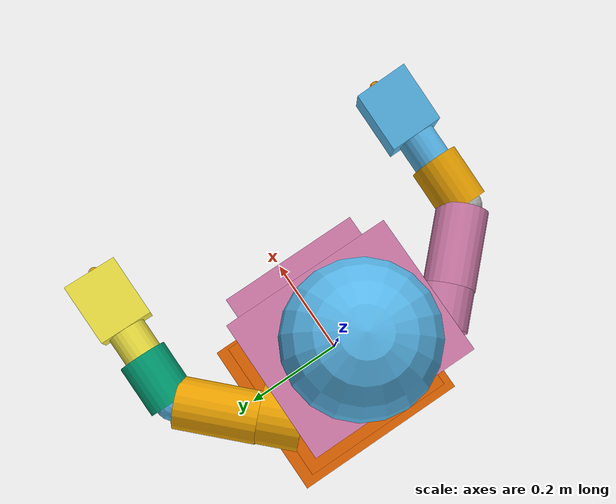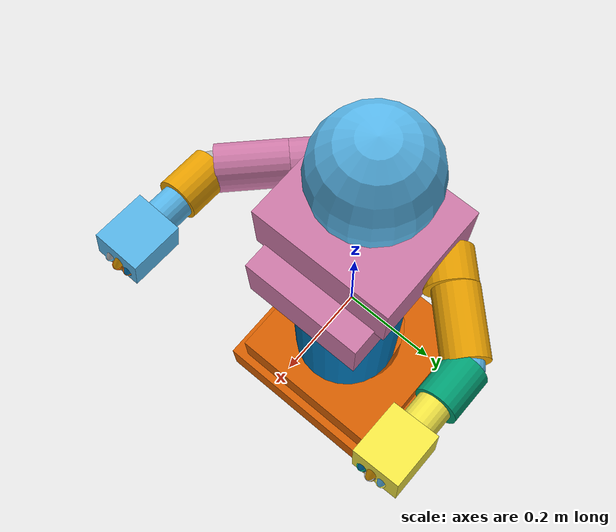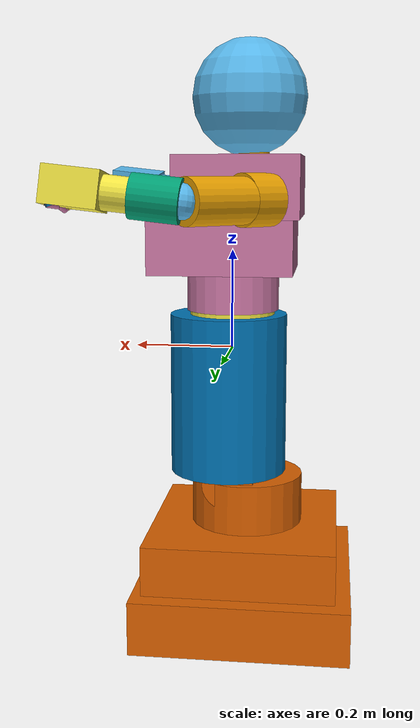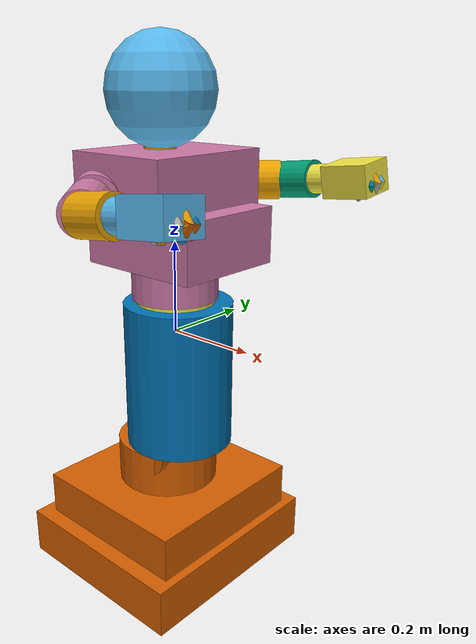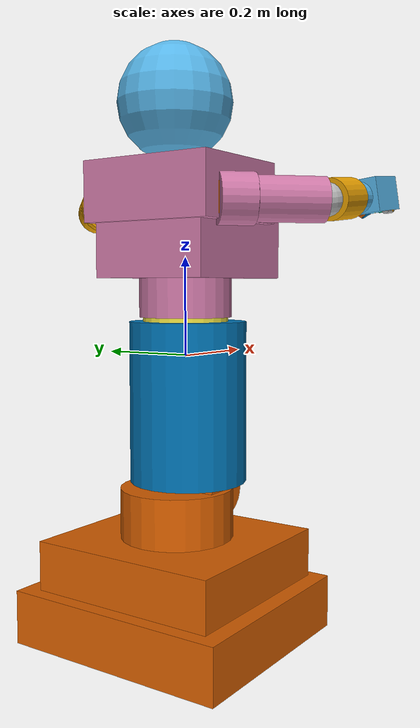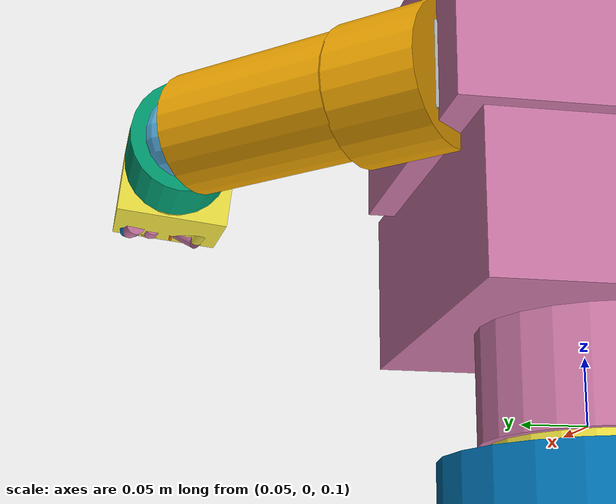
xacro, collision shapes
<?xml version="1.0" ?>
<robot name="Pepper" xmlns:xacro="http://www.ros.org/wiki/xacro">
	<xacro:arg name="base_link_height" default="0.602"/>
	<xacro:property name="base_link_height" value="$(arg base_link_height)"/>
	<xacro:property name="base_ground_clearance" value="0.334"/>
	<xacro:include filename="pepper_collisions.xacro"/>
	<xacro:include filename="pepper_visuals.xacro"/>
	<xacro:include filename="pepper_head.xacro"/>
	<xacro:include filename="pepper_legs.xacro"/>
	<xacro:include filename="pepper_torso.xacro"/>
	<xacro:include filename="pepper_arms.xacro"/>
	<xacro:include filename="pepper_sensors.xacro"/>
	<xacro:include filename="pepper_fingers.xacro"/>
	<xacro:include filename="pepper_wheels.xacro"/>
</robot>

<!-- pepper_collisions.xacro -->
<robot xmlns:xacro="http://www.ros.org/wiki/xacro">
  <xacro:macro name="collision_sphere" params="name radius xyz:='0 0 0'">
    <collision name="${name}">
      <origin xyz="${xyz}" rpy="0 0 0"/>
      <geometry><sphere radius="${radius}"/></geometry>
    </collision>
  </xacro:macro>

  <xacro:macro name="collision_cylinder" params="name radius length xyz rpy:='0 0 0'">
    <collision name="${name}">
      <origin xyz="${xyz}" rpy="${rpy}"/>
      <geometry><cylinder radius="${radius}" length="${length}"/></geometry>
    </collision>
  </xacro:macro>

  <xacro:macro name="collision_box" params="name size xyz">
    <collision name="${name}">
      <origin xyz="${xyz}" rpy="0 0 0"/>
      <geometry><box size="${size}"/></geometry>
    </collision>
  </xacro:macro>

  <xacro:macro name="collision_wheel">
    <xacro:collision_sphere name="wheel" radius="0.070"/>
  </xacro:macro>

  <xacro:macro name="collision_base">
    <xacro:collision_box name="lower_chassis" size="0.432 0.476 0.108"
                         xyz="-0.035 0 -0.254"/>
    <xacro:collision_box name="middle_chassis" size="0.382 0.404 0.100"
                         xyz="-0.030 0 -0.150"/>
    <xacro:collision_cylinder name="upper_chassis" radius="0.115" length="0.104"
                              xyz="-0.0318 0 -0.050"/>
    <xacro:collision_cylinder name="knee" radius="0.052" length="0.200"
                              xyz="0 0 0" rpy="${pi/2} 0 0"/>
  </xacro:macro>

  <xacro:macro name="collision_pelvis">
    <xacro:collision_cylinder name="pelvis" radius="0.120" length="0.330"
                              xyz="0.008 0 ${0.268 - 0.095}"/>
  </xacro:macro>

  <xacro:macro name="collision_hip">
    <xacro:collision_cylinder name="lower_hip" radius="0.087" length="0.160"
                              xyz="0.00046 0 ${0.079 - 0.080}"/>
    <xacro:collision_cylinder name="upper_hip" radius="0.051" length="0.046"
                              xyz="0.00031 0 ${0.079 + 0.022}"/>
  </xacro:macro>

  <xacro:macro name="collision_torso">
    <xacro:collision_cylinder name="lower_torso" radius="0.094" length="0.090"
                              xyz="${-0.00002 - 0.00066} 0 ${0.139 - 0.094}"/>
    <xacro:collision_box name="middle_torso" size="0.284 0.254 0.120"
                         xyz="${-0.00002 + 0.01475} 0 0.139"/>
    <xacro:collision_box name="upper_torso" size="0.244 0.294 0.122"
                         xyz="${-0.00002 - 0.018} 0 ${0.139 + 0.110}"/>
  </xacro:macro>

  <xacro:macro name="collision_neck">
    <xacro:collision_cylinder name="neck" radius="0.034" length="0.064"
                              xyz="-0.00075 0 0.00395"/>
  </xacro:macro>

  <xacro:macro name="collision_head">
    <xacro:collision_sphere name="head" radius="0.115" xyz="0.00485 0 0.11495"/>
  </xacro:macro>

  <xacro:macro name="collision_shoulder">
    <xacro:collision_cylinder name="shoulder" radius="0.042" length="0.060"
                              xyz="0 0 0"/>
  </xacro:macro>

  <xacro:macro name="collision_upper_arm" params="side">
    <xacro:collision_cylinder name="upper_arm_proximal" radius="0.050" length="0.070"
                              xyz="0.005 ${side * 0.00807} -0.0001" rpy="0 ${pi/2} 0"/>
    <xacro:collision_cylinder name="upper_arm_distal" radius="0.044" length="0.136"
                              xyz="0.107 ${side * 0.0155} -0.0005" rpy="0 ${pi/2} 0"/>
  </xacro:macro>

  <xacro:macro name="collision_elbow">
    <xacro:collision_sphere name="elbow" radius="0.0325"/>
  </xacro:macro>

  <xacro:macro name="collision_forearm" params="side">
    <xacro:collision_cylinder name="forearm" radius="0.041" length="0.090"
                              xyz="0.045 ${side * 0.002} -0.0003" rpy="0 ${pi/2} 0"/>
  </xacro:macro>

  <xacro:macro name="collision_hand" params="side">
    <xacro:collision_cylinder name="wrist" radius="0.032" length="0.054"
                              xyz="-0.037 0 0" rpy="0 ${pi/2} 0"/>
    <xacro:collision_box name="palm" size="0.105 0.090 0.069"
                         xyz="0.042 ${side * -0.00275} 0.00085"/>
  </xacro:macro>

  <xacro:macro name="collision_finger">
    <xacro:collision_cylinder name="phalanx" radius="0.009" length="0.028"
                              xyz="0.0083 0.0001 0.0004" rpy="0 ${pi/2} 0"/>
  </xacro:macro>

  <xacro:macro name="collision_fingertip">
    <xacro:collision_cylinder name="fingertip" radius="0.0083" length="0.023"
                              xyz="0.00585 0.000325 0.0011" rpy="0 ${pi/2} 0"/>
  </xacro:macro>
</robot>

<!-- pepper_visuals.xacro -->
<robot xmlns:xacro="http://www.ros.org/wiki/xacro">
	<xacro:macro name="insert_visu_RFinger41_link">
		<visual>
			<geometry>
				<mesh filename="package://pepper_description/meshes/RFinger41.dae" scale="0.1 0.1 0.1"/>
			</geometry>
			<origin rpy="0 0 0" xyz="0 0 0"/>
		</visual>
	</xacro:macro>
	<xacro:macro name="insert_visu_LFinger42_link">
		<visual>
			<geometry>
				<mesh filename="package://pepper_description/meshes/LFinger42.dae" scale="0.1 0.1 0.1"/>
			</geometry>
			<origin rpy="0 0 0" xyz="0 0 0"/>
		</visual>
	</xacro:macro>
	<xacro:macro name="insert_visu_Hip">
		<visual>
			<geometry>
				<mesh filename="package://pepper_description/meshes/HipRoll.dae" scale="0.1 0.1 0.1"/>
			</geometry>
			<origin rpy="0 0 0" xyz="0 0 0.079"/>
		</visual>
	</xacro:macro>
	<xacro:macro name="insert_visu_LElbow">
		<visual>
			<geometry>
				<mesh filename="package://pepper_description/meshes/LElbowYaw.dae" scale="0.1 0.1 0.1"/>
			</geometry>
			<origin rpy="0 0 0" xyz="0 0 0"/>
		</visual>
	</xacro:macro>
	<xacro:macro name="insert_visu_RFinger12_link">
		<visual>
			<geometry>
				<mesh filename="package://pepper_description/meshes/RFinger12.dae" scale="0.1 0.1 0.1"/>
			</geometry>
			<origin rpy="0 0 0" xyz="0 0 0"/>
		</visual>
	</xacro:macro>
	<xacro:macro name="insert_visu_LFinger33_link">
		<visual>
			<geometry>
				<mesh filename="package://pepper_description/meshes/LFinger33.dae" scale="0.1 0.1 0.1"/>
			</geometry>
			<origin rpy="0 0 0" xyz="0 0 0"/>
		</visual>
	</xacro:macro>
	<xacro:macro name="insert_visu_RFinger31_link">
		<visual>
			<geometry>
				<mesh filename="package://pepper_description/meshes/RFinger31.dae" scale="0.1 0.1 0.1"/>
			</geometry>
			<origin rpy="0 0 0" xyz="0 0 0"/>
		</visual>
	</xacro:macro>
	<xacro:macro name="insert_visu_WheelFL_link">
		<visual>
			<geometry>
				<mesh filename="package://pepper_description/meshes/WheelFL.dae" scale="0.1 0.1 0.1"/>
			</geometry>
			<origin rpy="0 0 0" xyz="0 0 0"/>
		</visual>
	</xacro:macro>
	<xacro:macro name="insert_visu_LFinger21_link">
		<visual>
			<geometry>
				<mesh filename="package://pepper_description/meshes/LFinger21.dae" scale="0.1 0.1 0.1"/>
			</geometry>
			<origin rpy="0 0 0" xyz="0 0 0"/>
		</visual>
	</xacro:macro>
	<xacro:macro name="insert_visu_RFinger32_link">
		<visual>
			<geometry>
				<mesh filename="package://pepper_description/meshes/RFinger32.dae" scale="0.1 0.1 0.1"/>
			</geometry>
			<origin rpy="0 0 0" xyz="0 0 0"/>
		</visual>
	</xacro:macro>
	<xacro:macro name="insert_visu_LFinger13_link">
		<visual>
			<geometry>
				<mesh filename="package://pepper_description/meshes/LFinger13.dae" scale="0.1 0.1 0.1"/>
			</geometry>
			<origin rpy="0 0 0" xyz="0 0 0"/>
		</visual>
	</xacro:macro>
	<xacro:macro name="insert_visu_LFinger32_link">
		<visual>
			<geometry>
				<mesh filename="package://pepper_description/meshes/LFinger32.dae" scale="0.1 0.1 0.1"/>
			</geometry>
			<origin rpy="0 0 0" xyz="0 0 0"/>
		</visual>
	</xacro:macro>
	<xacro:macro name="insert_visu_LThumb1_link">
		<visual>
			<geometry>
				<mesh filename="package://pepper_description/meshes/LThumb1.dae" scale="0.1 0.1 0.1"/>
			</geometry>
			<origin rpy="0 0 0" xyz="0 0 0"/>
		</visual>
	</xacro:macro>
	<xacro:macro name="insert_visu_LFinger11_link">
		<visual>
			<geometry>
				<mesh filename="package://pepper_description/meshes/LFinger11.dae" scale="0.1 0.1 0.1"/>
			</geometry>
			<origin rpy="0 0 0" xyz="0 0 0"/>
		</visual>
	</xacro:macro>
	<xacro:macro name="insert_visu_RFinger22_link">
		<visual>
			<geometry>
				<mesh filename="package://pepper_description/meshes/RFinger22.dae" scale="0.1 0.1 0.1"/>
			</geometry>
			<origin rpy="0 0 0" xyz="0 0 0"/>
		</visual>
	</xacro:macro>
	<xacro:macro name="insert_visu_RThumb2_link">
		<visual>
			<geometry>
				<mesh filename="package://pepper_description/meshes/RThumb2.dae" scale="0.1 0.1 0.1"/>
			</geometry>
			<origin rpy="0 0 0" xyz="0 0 0"/>
		</visual>
	</xacro:macro>
	<xacro:macro name="insert_visu_RFinger13_link">
		<visual>
			<geometry>
				<mesh filename="package://pepper_description/meshes/RFinger13.dae" scale="0.1 0.1 0.1"/>
			</geometry>
			<origin rpy="0 0 0" xyz="0 0 0"/>
		</visual>
	</xacro:macro>
	<xacro:macro name="insert_visu_base">
		<visual>
			<geometry>
				<mesh filename="package://pepper_description/meshes/KneePitch.dae" scale="0.1 0.1 0.1"/>
			</geometry>
			<origin rpy="0 0 0" xyz="0 0 0"/>
		</visual>
	</xacro:macro>
	<xacro:macro name="insert_visu_Head">
		<visual>
			<geometry>
				<mesh filename="package://pepper_description/meshes/HeadPitch.dae" scale="0.1 0.1 0.1"/>
			</geometry>
			<origin rpy="0 0 0" xyz="0 0 0"/>
		</visual>
	</xacro:macro>
	<xacro:macro name="insert_visu_LFinger22_link">
		<visual>
			<geometry>
				<mesh filename="package://pepper_description/meshes/LFinger22.dae" scale="0.1 0.1 0.1"/>
			</geometry>
			<origin rpy="0 0 0" xyz="0 0 0"/>
		</visual>
	</xacro:macro>
	<xacro:macro name="insert_visu_RFinger21_link">
		<visual>
			<geometry>
				<mesh filename="package://pepper_description/meshes/RFinger21.dae" scale="0.1 0.1 0.1"/>
			</geometry>
			<origin rpy="0 0 0" xyz="0 0 0"/>
		</visual>
	</xacro:macro>
	<xacro:macro name="insert_visu_LBicep">
		<visual>
			<geometry>
				<mesh filename="package://pepper_description/meshes/LShoulderRoll.dae" scale="0.1 0.1 0.1"/>
			</geometry>
			<origin rpy="0 0 0" xyz="0 0 0"/>
		</visual>
	</xacro:macro>
	<xacro:macro name="insert_visu_RThumb1_link">
		<visual>
			<geometry>
				<mesh filename="package://pepper_description/meshes/RThumb1.dae" scale="0.1 0.1 0.1"/>
			</geometry>
			<origin rpy="0 0 0" xyz="0 0 0"/>
		</visual>
	</xacro:macro>
	<xacro:macro name="insert_visu_LFinger41_link">
		<visual>
			<geometry>
				<mesh filename="package://pepper_description/meshes/LFinger41.dae" scale="0.1 0.1 0.1"/>
			</geometry>
			<origin rpy="0 0 0" xyz="0 0 0"/>
		</visual>
	</xacro:macro>
	<xacro:macro name="insert_visu_r_wrist">
		<visual>
			<geometry>
				<mesh filename="package://pepper_description/meshes/RWristYaw.dae" scale="0.1 0.1 0.1"/>
			</geometry>
			<origin rpy="0 0 0" xyz="0 0 0"/>
		</visual>
	</xacro:macro>
	<xacro:macro name="insert_visu_LForeArm">
		<visual>
			<geometry>
				<mesh filename="package://pepper_description/meshes/LElbowRoll.dae" scale="0.1 0.1 0.1"/>
			</geometry>
			<origin rpy="0 0 0" xyz="0 0 0"/>
		</visual>
	</xacro:macro>
	<xacro:macro name="insert_visu_LThumb2_link">
		<visual>
			<geometry>
				<mesh filename="package://pepper_description/meshes/LThumb2.dae" scale="0.1 0.1 0.1"/>
			</geometry>
			<origin rpy="0 0 0" xyz="0 0 0"/>
		</visual>
	</xacro:macro>
	<xacro:macro name="insert_visu_LFinger12_link">
		<visual>
			<geometry>
				<mesh filename="package://pepper_description/meshes/LFinger12.dae" scale="0.1 0.1 0.1"/>
			</geometry>
			<origin rpy="0 0 0" xyz="0 0 0"/>
		</visual>
	</xacro:macro>
	<xacro:macro name="insert_visu_RShoulder">
		<visual>
			<geometry>
				<mesh filename="package://pepper_description/meshes/RShoulderPitch.dae" scale="0.1 0.1 0.1"/>
			</geometry>
			<origin rpy="0 0 0" xyz="0 0 0"/>
		</visual>
	</xacro:macro>
	<xacro:macro name="insert_visu_RFinger23_link">
		<visual>
			<geometry>
				<mesh filename="package://pepper_description/meshes/RFinger23.dae" scale="0.1 0.1 0.1"/>
			</geometry>
			<origin rpy="0 0 0" xyz="0 0 0"/>
		</visual>
	</xacro:macro>
	<xacro:macro name="insert_visu_RBicep">
		<visual>
			<geometry>
				<mesh filename="package://pepper_description/meshes/RShoulderRoll.dae" scale="0.1 0.1 0.1"/>
			</geometry>
			<origin rpy="0 0 0" xyz="0 0 0"/>
		</visual>
	</xacro:macro>
	<xacro:macro name="insert_visu_RFinger11_link">
		<visual>
			<geometry>
				<mesh filename="package://pepper_description/meshes/RFinger11.dae" scale="0.1 0.1 0.1"/>
			</geometry>
			<origin rpy="0 0 0" xyz="0 0 0"/>
		</visual>
	</xacro:macro>
	<xacro:macro name="insert_visu_WheelB_link">
		<visual>
			<geometry>
				<mesh filename="package://pepper_description/meshes/WheelB.dae" scale="0.1 0.1 0.1"/>
			</geometry>
			<origin rpy="0 0 0" xyz="0 0 0"/>
		</visual>
	</xacro:macro>
	<xacro:macro name="insert_visu_LFinger23_link">
		<visual>
			<geometry>
				<mesh filename="package://pepper_description/meshes/LFinger23.dae" scale="0.1 0.1 0.1"/>
			</geometry>
			<origin rpy="0 0 0" xyz="0 0 0"/>
		</visual>
	</xacro:macro>
	<xacro:macro name="insert_visu_RElbow">
		<visual>
			<geometry>
				<mesh filename="package://pepper_description/meshes/RElbowYaw.dae" scale="0.1 0.1 0.1"/>
			</geometry>
			<origin rpy="0 0 0" xyz="0 0 0"/>
		</visual>
	</xacro:macro>
	<xacro:macro name="insert_visu_Neck">
		<visual>
			<geometry>
				<mesh filename="package://pepper_description/meshes/HeadYaw.dae" scale="0.1 0.1 0.1"/>
			</geometry>
			<origin rpy="0 0 0" xyz="0 0 0"/>
		</visual>
	</xacro:macro>
	<xacro:macro name="insert_visu_LFinger43_link">
		<visual>
			<geometry>
				<mesh filename="package://pepper_description/meshes/LFinger43.dae" scale="0.1 0.1 0.1"/>
			</geometry>
			<origin rpy="0 0 0" xyz="0 0 0"/>
		</visual>
	</xacro:macro>
	<xacro:macro name="insert_visu_RFinger43_link">
		<visual>
			<geometry>
				<mesh filename="package://pepper_description/meshes/RFinger43.dae" scale="0.1 0.1 0.1"/>
			</geometry>
			<origin rpy="0 0 0" xyz="0 0 0"/>
		</visual>
	</xacro:macro>
	<xacro:macro name="insert_visu_torso">
		<visual>
			<geometry>
				<mesh filename="package://pepper_description/meshes/Torso.dae" scale="0.1 0.1 0.1"/>
			</geometry>
			<origin rpy="0 0 0" xyz="-0.00002 0 0.139"/>
		</visual>
	</xacro:macro>
	<xacro:macro name="insert_visu_RFinger42_link">
		<visual>
			<geometry>
				<mesh filename="package://pepper_description/meshes/RFinger42.dae" scale="0.1 0.1 0.1"/>
			</geometry>
			<origin rpy="0 0 0" xyz="0 0 0"/>
		</visual>
	</xacro:macro>
	<xacro:macro name="insert_visu_LFinger31_link">
		<visual>
			<geometry>
				<mesh filename="package://pepper_description/meshes/LFinger31.dae" scale="0.1 0.1 0.1"/>
			</geometry>
			<origin rpy="0 0 0" xyz="0 0 0"/>
		</visual>
	</xacro:macro>
	<xacro:macro name="insert_visu_RFinger33_link">
		<visual>
			<geometry>
				<mesh filename="package://pepper_description/meshes/RFinger33.dae" scale="0.1 0.1 0.1"/>
			</geometry>
			<origin rpy="0 0 0" xyz="0 0 0"/>
		</visual>
	</xacro:macro>
	<xacro:macro name="insert_visu_l_wrist">
		<visual>
			<geometry>
				<mesh filename="package://pepper_description/meshes/LWristYaw.dae" scale="0.1 0.1 0.1"/>
			</geometry>
			<origin rpy="0 0 0" xyz="0 0 0"/>
		</visual>
	</xacro:macro>
	<xacro:macro name="insert_visu_RForeArm">
		<visual>
			<geometry>
				<mesh filename="package://pepper_description/meshes/RElbowRoll.dae" scale="0.1 0.1 0.1"/>
			</geometry>
			<origin rpy="0 0 0" xyz="0 0 0"/>
		</visual>
	</xacro:macro>
	<xacro:macro name="insert_visu_WheelFR_link">
		<visual>
			<geometry>
				<mesh filename="package://pepper_description/meshes/WheelFR.dae" scale="0.1 0.1 0.1"/>
			</geometry>
			<origin rpy="0 0 0" xyz="0 0 0"/>
		</visual>
	</xacro:macro>
	<xacro:macro name="insert_visu_LShoulder">
		<visual>
			<geometry>
				<mesh filename="package://pepper_description/meshes/LShoulderPitch.dae" scale="0.1 0.1 0.1"/>
			</geometry>
			<origin rpy="0 0 0" xyz="0 0 0"/>
		</visual>
	</xacro:macro>
	<xacro:macro name="insert_visu_Pelvis">
		<visual>
			<geometry>
				<mesh filename="package://pepper_description/meshes/HipPitch.dae" scale="0.1 0.1 0.1"/>
			</geometry>
			<origin rpy="0 0 0" xyz="0 0 0.268"/>
		</visual>
	</xacro:macro>
</robot>

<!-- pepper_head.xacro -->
<robot xmlns:xacro="http://www.ros.org/wiki/xacro">
	<joint name="HeadYaw" type="revolute">
		<parent link="torso"/>
		<child link="Neck"/>
		<origin rpy="0 0 0" xyz="-0.03802 0 0.3089"/>
		<axis xyz="0 0 1.0"/>
		<limit effort="5.428" lower="-2.08567" upper="2.08567" velocity="7.33998"/>
	</joint>
	<link name="Neck">
		<inertial>
			<mass value="0.27391"/>
			<inertia ixx="0.000343501" ixy="0" ixz="-1.88563e-05" iyy="0.000493898" iyz="2.09863e-06" izz="0.000215252"/>
			<origin rpy="0 0 0" xyz="-0.00207 0 -0.02636"/>
		</inertial>
		<xacro:insert_visu_Neck/>
		<xacro:collision_neck/>
	</link>
	<joint name="HeadPitch" type="revolute">
		<parent link="Neck"/>
		<child link="Head"/>
		<origin rpy="0 0 0" xyz="0 0 0"/>
		<axis xyz="0 1.0 0"/>
		<limit effort="2.666" lower="-0.706858" upper="0.637045" velocity="9.22756"/>
	</joint>
	<link name="Head">
		<inertial>
			<mass value="1.51893"/>
			<inertia ixx="0.00597209" ixy="0" ixz="0.000125138" iyy="0.0059054" iyz="4.3428e-07" izz="0.00570374"/>
			<origin rpy="0 0 0" xyz="0.00312 0 0.11152"/>
		</inertial>
		<xacro:insert_visu_Head/>
		<xacro:collision_head/>
	</link>
</robot>

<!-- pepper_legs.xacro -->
<robot xmlns:xacro="http://www.ros.org/wiki/xacro">
	<link name="base_link" />
	<joint name="base_link_fixedjoint" type="fixed">
		<parent link="base_link" />
		<child link="base" />
		<origin rpy="0 0 0" xyz="0 0 ${base_ground_clearance - base_link_height}" />
	</joint>
	<joint name="HipRoll" type="revolute">
		<parent link="Hip" />
		<child link="torso" />
		<origin rpy="0 0 0" xyz="0 0 0.079" />
		<axis xyz="-1 0 0" />
		<limit effort="10.1884" lower="-0.514872" upper="0.514872" velocity="2.27032" />
	</joint>
	<link name="Hip">
		<inertial>
			<mass value="1.02338" />
			<inertia ixx="0.00502422" ixy="0" ixz="-2.54911e-05" iyy="0.00640971" iyz="0.000159449" izz="0.00441082" />
			<origin rpy="0 0 0" xyz="0.00032 0 0.01861" />
		</inertial>
		<xacro:insert_visu_Hip />
		<xacro:collision_hip/>
	</link>
	<joint name="HipPitch" type="revolute">
		<parent link="Pelvis" />
		<child link="Hip" />
		<origin rpy="0 0 0" xyz="0 0 0.268" />
		<axis xyz="0 -1 0" />
		<limit effort="19.787" lower="-1.03847" upper="1.03847" velocity="2.93276" />
	</joint>
	<link name="Pelvis">
		<inertial>
			<mass value="2.45917" />
			<inertia ixx="0.034351" ixy="0" ixz="0.000223034" iyy="0.0303122" iyz="-8.37542e-05" izz="0.0143771" />
			<origin rpy="0 0 0" xyz="0.00237 0 0.17146" />
		</inertial>
		<xacro:insert_visu_Pelvis />
		<xacro:collision_pelvis/>
	</link>
	<joint name="KneePitch" type="revolute">
		<parent link="base" />
		<child link="Pelvis" />
		<origin rpy="0 0 0" xyz="0 0 0" />
		<axis xyz="0 -1 0" />
		<limit effort="27.702" lower="-0.514872" upper="0.514872" velocity="2.93276" />
	</joint>
	<link name="base">
		<inertial>
			<mass value="11.6015" />
			<inertia ixx="0.129229" ixy="-0.000401943" ixz="0.00048556" iyy="0.122839" iyz="-1.01666e-08" izz="0.108168" />
			<origin rpy="0 0 0" xyz="0.00220451 0 -0.185729" />
		</inertial>
		<xacro:insert_visu_base />
		<xacro:collision_base/>
	</link>
</robot>

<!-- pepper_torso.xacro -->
<robot xmlns:xacro="http://www.ros.org/wiki/xacro">

	<link name="torso">
		<inertial>
			<mass value="3.99533"/>
			<inertia ixx="0.0452761" ixy="0" ixz="0.00499091" iyy="0.0432702" iyz="-0.000266886" izz="0.0258881"/>
			<origin rpy="0 0 0" xyz="0.0032 0 0.12871"/>
		</inertial>
		<xacro:insert_visu_torso/>
		<xacro:collision_torso/>
	</link>
</robot>

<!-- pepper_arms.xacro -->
<robot xmlns:xacro="http://www.ros.org/wiki/xacro">
	<joint name="LShoulderPitch" type="revolute">
		<parent link="torso"/>
		<child link="LShoulder"/>
		<origin rpy="0 0 0" xyz="-0.05702 0.14974 0.22582"/>
		<axis xyz="0 1.0 0"/>
		<limit effort="5.428" lower="-2.08567" upper="2.08567" velocity="7.33998"/>
	</joint>
	<link name="LShoulder">
		<inertial>
			<mass value="0.3125"/>
			<inertia ixx="0.000361198" ixy="-1.98347e-06" ixz="6.35907e-07" iyy="0.000137229" iyz="-5.68878e-06" izz="0.000399194"/>
			<origin rpy="0 0 0" xyz="0.00018 -0.01856 0.00099"/>
		</inertial>
		<xacro:insert_visu_LShoulder/>
		<xacro:collision_shoulder/>
	</link>
	<joint name="LShoulderRoll" type="revolute">
		<parent link="LShoulder"/>
		<child link="LBicep"/>
		<origin rpy="0 0 0" xyz="0 0 0"/>
		<axis xyz="0 0 1.0"/>
		<limit effort="2.666" lower="0.00872665" upper="1.56207" velocity="9.22756"/>
	</joint>
	<link name="LBicep">
		<inertial>
			<mass value="0.50527"/>
			<inertia ixx="0.000500872" ixy="-3.55918e-05" ixz="8.51263e-05" iyy="0.00126284" iyz="9.06813e-06" izz="0.00115718"/>
			<origin rpy="0 0 0" xyz="0.08151 0.01284 -0.01017"/>
		</inertial>
		<xacro:insert_visu_LBicep/>
		<xacro:collision_upper_arm side="1"/>
	</link>
	<joint name="LElbowYaw" type="revolute">
		<parent link="LBicep"/>
		<child link="LElbow"/>
		<origin rpy="0 -0.157079 0" xyz="0.1812 0.015 0.00013"/>
		<axis xyz="1.0 0 0"/>
		<limit effort="5.428" lower="-2.08567" upper="2.08567" velocity="7.33998"/>
	</joint>
	<link name="LElbow">
		<inertial>
			<mass value="0.27495"/>
			<inertia ixx="0.000122971" ixy="9.86024e-07" ixz="-2.55838e-05" iyy="0.000331766" iyz="-1.98925e-06" izz="0.000303047"/>
			<origin rpy="0 0 0" xyz="-0.02297 -0.00019 0.00119"/>
		</inertial>
		<xacro:insert_visu_LElbow/>
		<xacro:collision_elbow/>
	</link>
	<joint name="LElbowRoll" type="revolute">
		<parent link="LElbow"/>
		<child link="LForeArm"/>
		<origin rpy="0 0 0" xyz="0 0 0"/>
		<axis xyz="0 0 1.0"/>
		<limit effort="2.666" lower="-1.56207" upper="-0.00872665" velocity="9.22756"/>
	</joint>
	<link name="LForeArm">
		<inertial>
			<mass value="0.16579"/>
			<inertia ixx="0.00156513" ixy="1.47517e-05" ixz="-6.05746e-05" iyy="0.00173219" iyz="-1.7619e-07" izz="0.000273081"/>
			<origin rpy="0 0 0" xyz="0.0593 0.00271 -0.01014"/>
		</inertial>
		<xacro:insert_visu_LForeArm/>
		<xacro:collision_forearm side="1"/>
	</link>
	<joint name="LWristYaw" type="revolute">
		<parent link="LForeArm"/>
		<child link="l_wrist"/>
		<origin rpy="0 0 0" xyz="0.15 0 0"/>
		<axis xyz="1.0 0 0"/>
		<limit effort="0.2014" lower="-1.82387" upper="1.82387" velocity="17.3835"/>
	</joint>
	<link name="l_wrist">
		<inertial>
			<mass value="0.27555"/>
			<inertia ixx="0.000151643" ixy="1.06629e-05" ixz="2.89509e-06" iyy="0.000431099" iyz="-3.13715e-06" izz="0.000456172"/>
			<origin rpy="0 0 0" xyz="0.03536 -0.00072 -0.00207"/>
		</inertial>
		<xacro:insert_visu_l_wrist/>
		<xacro:collision_hand side="1"/>
	</link>
	<joint name="LHand" type="revolute">
		<parent link="l_wrist"/>
		<child link="l_gripper"/>
		<origin rpy="0 0 0" xyz="0.025 0 0"/>
		<axis xyz="1.0 0 0"/>
		<limit effort="0.144" lower="0.02" upper="0.98" velocity="12.56"/>
	</joint>
	<link name="l_gripper">
		<inertial>
			<mass value="2e-06"/>
			<inertia ixx="1.1e-09" ixy="0" ixz="0" iyy="1.1e-09" iyz="0" izz="1.1e-09"/>
		</inertial>
	</link>
	<joint name="RShoulderPitch" type="revolute">
		<parent link="torso"/>
		<child link="RShoulder"/>
		<origin rpy="0 0 0" xyz="-0.05702 -0.14974 0.22582"/>
		<axis xyz="0 1.0 0"/>
		<limit effort="5.428" lower="-2.08567" upper="2.08567" velocity="7.33998"/>
	</joint>
	<link name="RShoulder">
		<inertial>
			<mass value="0.3125"/>
			<inertia ixx="0.000361198" ixy="1.98347e-06" ixz="6.35907e-07" iyy="0.000137229" iyz="5.68878e-06" izz="0.000399194"/>
			<origin rpy="0 0 0" xyz="0.00018 0.01856 0.00099"/>
		</inertial>
		<xacro:insert_visu_RShoulder/>
		<xacro:collision_shoulder/>
	</link>
	<joint name="RShoulderRoll" type="revolute">
		<parent link="RShoulder"/>
		<child link="RBicep"/>
		<origin rpy="0 0 0" xyz="0 0 0"/>
		<axis xyz="0 0 1.0"/>
		<limit effort="2.666" lower="-1.56207" upper="-0.00872665" velocity="9.22756"/>
	</joint>
	<link name="RBicep">
		<inertial>
			<mass value="0.50527"/>
			<inertia ixx="0.000500872" ixy="3.55918e-05" ixz="8.51263e-05" iyy="0.00126284" iyz="-9.06813e-06" izz="0.00115718"/>
			<origin rpy="0 0 0" xyz="0.08151 -0.01284 -0.01017"/>
		</inertial>
		<xacro:insert_visu_RBicep/>
		<xacro:collision_upper_arm side="-1"/>
	</link>
	<joint name="RElbowYaw" type="revolute">
		<parent link="RBicep"/>
		<child link="RElbow"/>
		<origin rpy="0 -0.157079 0" xyz="0.1812 -0.015 0.00013"/>
		<axis xyz="1.0 0 0"/>
		<limit effort="5.428" lower="-2.08567" upper="2.08567" velocity="7.33998"/>
	</joint>
	<link name="RElbow">
		<inertial>
			<mass value="0.27495"/>
			<inertia ixx="0.000122971" ixy="-9.86024e-07" ixz="-2.55838e-05" iyy="0.000331766" iyz="1.98925e-06" izz="0.000303047"/>
			<origin rpy="0 0 0" xyz="-0.02297 0.00019 0.00119"/>
		</inertial>
		<xacro:insert_visu_RElbow/>
		<xacro:collision_elbow/>
	</link>
	<joint name="RElbowRoll" type="revolute">
		<parent link="RElbow"/>
		<child link="RForeArm"/>
		<origin rpy="0 0 0" xyz="0 0 0"/>
		<axis xyz="0 0 1.0"/>
		<limit effort="2.666" lower="0.00872665" upper="1.56207" velocity="9.22756"/>
	</joint>
	<link name="RForeArm">
		<inertial>
			<mass value="0.16579"/>
			<inertia ixx="0.00156513" ixy="-1.47517e-05" ixz="-6.05746e-05" iyy="0.00173219" iyz="1.7619e-07" izz="0.000273081"/>
			<origin rpy="0 0 0" xyz="0.0593 -0.00271 -0.01014"/>
		</inertial>
		<xacro:insert_visu_RForeArm/>
		<xacro:collision_forearm side="-1"/>
	</link>
	<joint name="RWristYaw" type="revolute">
		<parent link="RForeArm"/>
		<child link="r_wrist"/>
		<origin rpy="0 0 0" xyz="0.15 0 0"/>
		<axis xyz="1.0 0 0"/>
		<limit effort="0.2014" lower="-1.82387" upper="1.82387" velocity="17.3835"/>
	</joint>
	<link name="r_wrist">
		<inertial>
			<mass value="0.27555"/>
			<inertia ixx="0.000151643" ixy="-1.06629e-05" ixz="2.89509e-06" iyy="0.000431099" iyz="3.13715e-06" izz="0.000456172"/>
			<origin rpy="0 0 0" xyz="0.03536 0.00072 -0.00207"/>
		</inertial>
		<xacro:insert_visu_r_wrist/>
		<xacro:collision_hand side="-1"/>
	</link>
	<joint name="RHand" type="revolute">
		<parent link="r_wrist"/>
		<child link="r_gripper"/>
		<origin rpy="0 0 0" xyz="0.025 0 0"/>
		<axis xyz="1.0 0 0"/>
		<limit effort="0.144" lower="0.02" upper="0.98" velocity="12.56"/>
	</joint>
	<link name="r_gripper">
		<inertial>
			<mass value="2e-06"/>
			<inertia ixx="1.1e-09" ixy="0" ixz="0" iyy="1.1e-09" iyz="0" izz="1.1e-09"/>
		</inertial>
	</link>
</robot>

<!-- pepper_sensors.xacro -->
<robot xmlns:xacro="http://www.ros.org/wiki/xacro">
	<link name="SonarBack_frame"/>
	<joint name="Sonar/Back_sensor_fixedjoint" type="fixed">
		<parent link="base"/>
		<child link="SonarBack_frame"/>
		<origin rpy="-1.81761e-08 -0.209438 -3.14159" xyz="-0.0718 0 -0.0534"/>
	</joint>
	<link name="CameraBottom_optical_frame"/>
	<joint name="CameraBottom_optical_frame_fixedjoint" type="fixed">
		<parent link="CameraBottom_frame"/>
		<child link="CameraBottom_optical_frame"/>
		<origin rpy="-1.57079632679 0 -1.57079632679" xyz="0 0 0"/>
	</joint>
	<link name="CameraDepth_optical_frame"/>
	<joint name="CameraDepth_optical_frame_fixedjoint" type="fixed">
		<parent link="CameraDepth_frame"/>
		<child link="CameraDepth_optical_frame"/>
		<origin rpy="-1.57079632679 0 -1.57079632679" xyz="0 0 0"/>
	</joint>
	<link name="LHandTouchBack_frame"/>
	<joint name="LHand/Touch/Back_sensor_fixedjoint" type="fixed">
		<parent link="l_wrist"/>
		<child link="LHandTouchBack_frame"/>
		<origin rpy="1.5708 -1.5708 -3.14159" xyz="0.0523 0 0.0304"/>
	</joint>
	<link name="VerticalLeftLaser_frame"/>
	<joint name="LaserSensor/VerticalLeft_sensor_fixedjoint" type="fixed">
		<parent link="base"/>
		<child link="VerticalLeftLaser_frame"/>
		<origin rpy="0 0.349066 0" xyz="0.0562 0 -0.0692"/>
	</joint>
	<link name="SurroundingFrontLaser_device_frame"/>
	<joint name="LaserSensor/Front_sensor_fixedjoint" type="fixed">
		<parent link="base"/>
		<child link="SurroundingFrontLaser_device_frame"/>
		<origin rpy="0 0.349066 0" xyz="0.0562 0 -0.0692"/>
	</joint>
	<link name="BumperB_frame"/>
	<joint name="Bumper/Back_sensor_fixedjoint" type="fixed">
		<parent link="base"/>
		<child link="BumperB_frame"/>
		<origin rpy="0 0 -3.14159" xyz="-0.251 0 -0.264"/>
	</joint>
	<link name="SurroundingLeftLaser_frame"/>
	<joint name="LaserSensor/Left_projected_sensor_fixedjoint" type="fixed">
		<parent link="base"/>
		<child link="SurroundingLeftLaser_frame"/>
		<origin rpy="0 0 1.75728" xyz="-0.018 0.0899 -0.334"/>
	</joint>
	<link name="ShovelLaser_frame"/>
	<joint name="LaserSensor/Shovel_sensor_fixedjoint" type="fixed">
		<parent link="base"/>
		<child link="ShovelLaser_frame"/>
		<origin rpy="0 0.349066 0" xyz="0.0562 0 -0.0692"/>
	</joint>
	<link name="ImuTorsoAccelerometer_frame"/>
	<joint name="Accelerometer_sensor_fixedjoint" type="fixed">
		<parent link="torso"/>
		<child link="ImuTorsoAccelerometer_frame"/>
		<origin rpy="0 0 0" xyz="0.00237 -0.03575 0.14526"/>
	</joint>
	<link name="RSpeaker_frame"/>
	<joint name="SpeakerRight_sensor_fixedjoint" type="fixed">
		<parent link="Head"/>
		<child link="RSpeaker_frame"/>
		<origin rpy="0 0 0" xyz="0 0 0"/>
	</joint>
	<link name="SurroundingRightLaser_device_frame"/>
	<joint name="LaserSensor/Right_sensor_fixedjoint" type="fixed">
		<parent link="base"/>
		<child link="SurroundingRightLaser_device_frame"/>
		<origin rpy="0 0.349066 -1.5708" xyz="-0.018 -0.0899 -0.0759"/>
	</joint>
	<link name="LSpeaker_frame"/>
	<joint name="SpeakerLeft_sensor_fixedjoint" type="fixed">
		<parent link="Head"/>
		<child link="LSpeaker_frame"/>
		<origin rpy="0 0 0" xyz="0 0 0"/>
	</joint>
	<link name="RHandTouchBack_frame"/>
	<joint name="RHand/Touch/Back_sensor_fixedjoint" type="fixed">
		<parent link="r_wrist"/>
		<child link="RHandTouchBack_frame"/>
		<origin rpy="1.5708 -1.5708 -3.14159" xyz="0.0523 0 0.0304"/>
	</joint>
	<link name="CameraTop_frame"/>
	<joint name="CameraTop_sensor_fixedjoint" type="fixed">
		<parent link="Head"/>
		<child link="CameraTop_frame"/>
		<origin rpy="0 0 0" xyz="0.08601 0 0.16284"/>
	</joint>
	<link name="SurroundingLeftLaser_device_frame"/>
	<joint name="LaserSensor/Left_sensor_fixedjoint" type="fixed">
		<parent link="base"/>
		<child link="SurroundingLeftLaser_device_frame"/>
		<origin rpy="0 0.349066 1.5708" xyz="-0.018 0.0899 -0.0759"/>
	</joint>
	<link name="CameraDepth_frame"/>
	<joint name="CameraDepth_sensor_fixedjoint" type="fixed">
		<parent link="Head"/>
		<child link="CameraDepth_frame"/>
		<origin rpy="0 0 0" xyz="0.05138 0.039 0.1194"/>
	</joint>
	<link name="SurroundingRightLaser_frame"/>
	<joint name="LaserSensor/Right_projected_sensor_fixedjoint" type="fixed">
		<parent link="base"/>
		<child link="SurroundingRightLaser_frame"/>
		<origin rpy="0 0 -1.75728" xyz="-0.018 -0.0899 -0.334"/>
	</joint>
	<link name="HeadTouchFront_frame"/>
	<joint name="Head/Touch/Front_sensor_fixedjoint" type="fixed">
		<parent link="Head"/>
		<child link="HeadTouchFront_frame"/>
		<origin rpy="0 0.20944 0" xyz="0.028175 0 0.21267"/>
	</joint>
	<link name="VerticalRightLaser_frame"/>
	<joint name="LaserSensor/VerticalRight_sensor_fixedjoint" type="fixed">
		<parent link="base"/>
		<child link="VerticalRightLaser_frame"/>
		<origin rpy="0 0.349066 0" xyz="0.0562 0 -0.0692"/>
	</joint>
	<link name="SonarFront_frame"/>
	<joint name="Sonar/Front_sensor_fixedjoint" type="fixed">
		<parent link="base"/>
		<child link="SonarFront_frame"/>
		<origin rpy="0 -0.322858 0" xyz="0.0699 0 -0.1023"/>
	</joint>
	<link name="BumperFL_frame"/>
	<joint name="Bumper/FrontLeft_sensor_fixedjoint" type="fixed">
		<parent link="base"/>
		<child link="BumperFL_frame"/>
		<origin rpy="0 0 0.48886" xyz="0.129 0.227 -0.264"/>
	</joint>
	<link name="CameraBottom_frame"/>
	<joint name="CameraBottom_sensor_fixedjoint" type="fixed">
		<parent link="Head"/>
		<child link="CameraBottom_frame"/>
		<origin rpy="0 0.698132 0" xyz="0.09262 0 0.06177"/>
	</joint>
	<link name="CameraTop_optical_frame"/>
	<joint name="CameraTop_optical_frame_fixedjoint" type="fixed">
		<parent link="CameraTop_frame"/>
		<child link="CameraTop_optical_frame"/>
		<origin rpy="-1.57079632679 0 -1.57079632679" xyz="0 0 0"/>
	</joint>
	<link name="ImuBaseAccelerometer_frame"/>
	<joint name="AccelerometerBase_sensor_fixedjoint" type="fixed">
		<parent link="base"/>
		<child link="ImuBaseAccelerometer_frame"/>
		<origin rpy="0 0 0" xyz="0.0147 -0.0017 -0.26319"/>
	</joint>
	<link name="ImuTorsoGyrometer_frame"/>
	<joint name="Gyrometer_sensor_fixedjoint" type="fixed">
		<parent link="torso"/>
		<child link="ImuTorsoGyrometer_frame"/>
		<origin rpy="0 0 0" xyz="0.00202 -0.03491 0.12941"/>
	</joint>
	<link name="Tablet_frame"/>
	<joint name="Tablet_sensor_fixedjoint" type="fixed">
		<parent link="torso"/>
		<child link="Tablet_frame"/>
		<origin rpy="0 -0.523599 0" xyz="0.0839049 0 0.20151"/>
	</joint>
	<link name="HeadTouchRear_frame"/>
	<joint name="Head/Touch/Rear_sensor_fixedjoint" type="fixed">
		<parent link="Head"/>
		<child link="HeadTouchRear_frame"/>
		<origin rpy="0 -0.314159 0" xyz="-0.03376 0 0.21052"/>
	</joint>
	<link name="BumperFR_frame"/>
	<joint name="Bumper/FrontRight_sensor_fixedjoint" type="fixed">
		<parent link="base"/>
		<child link="BumperFR_frame"/>
		<origin rpy="0 0 -0.48886" xyz="0.129 -0.227 -0.264"/>
	</joint>
	<link name="SurroundingFrontLaser_frame"/>
	<joint name="LaserSensor/Front_projected_sensor_fixedjoint" type="fixed">
		<parent link="base"/>
		<child link="SurroundingFrontLaser_frame"/>
		<origin rpy="0 0 0" xyz="0.0562 0 -0.334"/>
	</joint>
	<link name="ChestButton_frame"/>
	<joint name="ChestBoard/Button_sensor_fixedjoint" type="fixed">
		<parent link="torso"/>
		<child link="ChestButton_frame"/>
		<origin rpy="0 0 0" xyz="0.049851 0.001588 0.194163"/>
	</joint>
	<link name="HeadTouchMiddle_frame"/>
	<joint name="Head/Touch/Middle_sensor_fixedjoint" type="fixed">
		<parent link="Head"/>
		<child link="HeadTouchMiddle_frame"/>
		<origin rpy="0 -0.0349066 0" xyz="0.0041 0 0.2159"/>
	</joint>
</robot>

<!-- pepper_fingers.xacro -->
<robot xmlns:xacro="http://www.ros.org/wiki/xacro">
	<link name="RFinger41_link">
		<inertial>
			<mass value="2e-06"/>
			<inertia ixx="1.1e-09" ixy="0" ixz="0" iyy="1.1e-09" iyz="0" izz="1.1e-09"/>
		</inertial>
		<xacro:insert_visu_RFinger41_link/>
		<xacro:collision_finger/>
	</link>
	<joint name="RFinger41" type="continuous">
		<parent link="r_wrist"/>
		<child link="RFinger41_link"/>
		<origin rpy="1.74402 1.04064 -0.0683394" xyz="0.074 -0.0309 0"/>
		<axis xyz="0 0 1.0"/>
		<mimic joint="RHand" multiplier="0.872665" offset="0"/>
	</joint>
	<link name="LFinger42_link">
		<inertial>
			<mass value="2e-06"/>
			<inertia ixx="1.1e-09" ixy="0" ixz="0" iyy="1.1e-09" iyz="0" izz="1.1e-09"/>
		</inertial>
		<xacro:insert_visu_LFinger42_link/>
		<xacro:collision_finger/>
	</link>
	<joint name="LFinger42" type="continuous">
		<parent link="LFinger41_link"/>
		<child link="LFinger42_link"/>
		<origin rpy="0 0 -1.0472" xyz="0.018 0 0"/>
		<axis xyz="0 0 1.0"/>
		<mimic joint="LHand" multiplier="0.872665" offset="0"/>
	</joint>
	<link name="RFinger12_link">
		<inertial>
			<mass value="2e-06"/>
			<inertia ixx="1.1e-09" ixy="0" ixz="0" iyy="1.1e-09" iyz="0" izz="1.1e-09"/>
		</inertial>
		<xacro:insert_visu_RFinger12_link/>
		<xacro:collision_finger/>
	</link>
	<joint name="RFinger12" type="continuous">
		<parent link="RFinger11_link"/>
		<child link="RFinger12_link"/>
		<origin rpy="0 0 -1.0472" xyz="0.018 0 0"/>
		<axis xyz="0 0 1.0"/>
		<mimic joint="RHand" multiplier="0.872665" offset="0"/>
	</joint>
	<link name="LFinger33_link">
		<inertial>
			<mass value="2e-06"/>
			<inertia ixx="1.1e-09" ixy="0" ixz="0" iyy="1.1e-09" iyz="0" izz="1.1e-09"/>
		</inertial>
		<xacro:insert_visu_LFinger33_link/>
		<xacro:collision_fingertip/>
	</link>
	<joint name="LFinger33" type="continuous">
		<parent link="LFinger32_link"/>
		<child link="LFinger33_link"/>
		<origin rpy="0 0 -1.0472" xyz="0.018 0 0"/>
		<axis xyz="0 0 1.0"/>
		<mimic joint="LHand" multiplier="0.872665" offset="0"/>
	</joint>
	<link name="RFinger31_link">
		<inertial>
			<mass value="2e-06"/>
			<inertia ixx="1.1e-09" ixy="0" ixz="0" iyy="1.1e-09" iyz="0" izz="1.1e-09"/>
		</inertial>
		<xacro:insert_visu_RFinger31_link/>
		<xacro:collision_finger/>
	</link>
	<joint name="RFinger31" type="continuous">
		<parent link="r_wrist"/>
		<child link="RFinger31_link"/>
		<origin rpy="1.67523 1.04483 0.029316" xyz="0.0833 -0.0123 0.004"/>
		<axis xyz="0 0 1.0"/>
		<mimic joint="RHand" multiplier="0.872665" offset="0"/>
	</joint>
	<link name="LFinger21_link">
		<inertial>
			<mass value="2e-06"/>
			<inertia ixx="1.1e-09" ixy="0" ixz="0" iyy="1.1e-09" iyz="0" izz="1.1e-09"/>
		</inertial>
		<xacro:insert_visu_LFinger21_link/>
		<xacro:collision_finger/>
	</link>
	<joint name="LFinger21" type="continuous">
		<parent link="l_wrist"/>
		<child link="LFinger21_link"/>
		<origin rpy="1.5708 1.0472 -0.061086" xyz="0.0873 -0.0073 0.006"/>
		<axis xyz="0 0 1.0"/>
		<mimic joint="LHand" multiplier="0.872665" offset="0"/>
	</joint>
	<link name="RFinger32_link">
		<inertial>
			<mass value="2e-06"/>
			<inertia ixx="1.1e-09" ixy="0" ixz="0" iyy="1.1e-09" iyz="0" izz="1.1e-09"/>
		</inertial>
		<xacro:insert_visu_RFinger32_link/>
		<xacro:collision_finger/>
	</link>
	<joint name="RFinger32" type="continuous">
		<parent link="RFinger31_link"/>
		<child link="RFinger32_link"/>
		<origin rpy="0 0 -1.0472" xyz="0.018 0 0"/>
		<axis xyz="0 0 1.0"/>
		<mimic joint="RHand" multiplier="0.872665" offset="0"/>
	</joint>
	<link name="LFinger13_link">
		<inertial>
			<mass value="2e-06"/>
			<inertia ixx="1.1e-09" ixy="0" ixz="0" iyy="1.1e-09" iyz="0" izz="1.1e-09"/>
		</inertial>
		<xacro:insert_visu_LFinger13_link/>
		<xacro:collision_fingertip/>
	</link>
	<joint name="LFinger13" type="continuous">
		<parent link="LFinger12_link"/>
		<child link="LFinger13_link"/>
		<origin rpy="0 0 -1.0472" xyz="0.018 0 0"/>
		<axis xyz="0 0 1.0"/>
		<mimic joint="LHand" multiplier="0.872665" offset="0"/>
	</joint>
	<link name="LFinger32_link">
		<inertial>
			<mass value="2e-06"/>
			<inertia ixx="1.1e-09" ixy="0" ixz="0" iyy="1.1e-09" iyz="0" izz="1.1e-09"/>
		</inertial>
		<xacro:insert_visu_LFinger32_link/>
		<xacro:collision_finger/>
	</link>
	<joint name="LFinger32" type="continuous">
		<parent link="LFinger31_link"/>
		<child link="LFinger32_link"/>
		<origin rpy="0 0 -1.0472" xyz="0.018 0 0"/>
		<axis xyz="0 0 1.0"/>
		<mimic joint="LHand" multiplier="0.872665" offset="0"/>
	</joint>
	<link name="LFinger11_link">
		<inertial>
			<mass value="2e-06"/>
			<inertia ixx="1.1e-09" ixy="0" ixz="0" iyy="1.1e-09" iyz="0" izz="1.1e-09"/>
		</inertial>
		<xacro:insert_visu_LFinger11_link/>
		<xacro:collision_finger/>
	</link>
	<joint name="LFinger11" type="continuous">
		<parent link="l_wrist"/>
		<child link="LFinger11_link"/>
		<origin rpy="1.74402 1.04064 -0.0334335" xyz="0.0821 -0.0268 0.004"/>
		<axis xyz="0 0 1.0"/>
		<mimic joint="LHand" multiplier="0.872665" offset="0"/>
	</joint>
	<link name="RFinger22_link">
		<inertial>
			<mass value="2e-06"/>
			<inertia ixx="1.1e-09" ixy="0" ixz="0" iyy="1.1e-09" iyz="0" izz="1.1e-09"/>
		</inertial>
		<xacro:insert_visu_RFinger22_link/>
		<xacro:collision_finger/>
	</link>
	<joint name="RFinger22" type="continuous">
		<parent link="RFinger21_link"/>
		<child link="RFinger22_link"/>
		<origin rpy="0 0 -1.0472" xyz="0.018 0 0"/>
		<axis xyz="0 0 1.0"/>
		<mimic joint="RHand" multiplier="0.872665" offset="0"/>
	</joint>
	<link name="RFinger13_link">
		<inertial>
			<mass value="2e-06"/>
			<inertia ixx="1.1e-09" ixy="0" ixz="0" iyy="1.1e-09" iyz="0" izz="1.1e-09"/>
		</inertial>
		<xacro:insert_visu_RFinger13_link/>
		<xacro:collision_fingertip/>
	</link>
	<joint name="RFinger13" type="continuous">
		<parent link="RFinger12_link"/>
		<child link="RFinger13_link"/>
		<origin rpy="0 0 -1.0472" xyz="0.018 0 0"/>
		<axis xyz="0 0 1.0"/>
		<mimic joint="RHand" multiplier="0.872665" offset="0"/>
	</joint>
	<link name="LFinger22_link">
		<inertial>
			<mass value="2e-06"/>
			<inertia ixx="1.1e-09" ixy="0" ixz="0" iyy="1.1e-09" iyz="0" izz="1.1e-09"/>
		</inertial>
		<xacro:insert_visu_LFinger22_link/>
		<xacro:collision_finger/>
	</link>
	<joint name="LFinger22" type="continuous">
		<parent link="LFinger21_link"/>
		<child link="LFinger22_link"/>
		<origin rpy="0 0 -1.0472" xyz="0.018 0 0"/>
		<axis xyz="0 0 1.0"/>
		<mimic joint="LHand" multiplier="0.872665" offset="0"/>
	</joint>
	<link name="RFinger21_link">
		<inertial>
			<mass value="2e-06"/>
			<inertia ixx="1.1e-09" ixy="0" ixz="0" iyy="1.1e-09" iyz="0" izz="1.1e-09"/>
		</inertial>
		<xacro:insert_visu_RFinger21_link/>
		<xacro:collision_finger/>
	</link>
	<joint name="RFinger21" type="continuous">
		<parent link="r_wrist"/>
		<child link="RFinger21_link"/>
		<origin rpy="1.5708 1.0472 0.061086" xyz="0.0873 0.0073 0.006"/>
		<axis xyz="0 0 1.0"/>
		<mimic joint="RHand" multiplier="0.872665" offset="0"/>
	</joint>
	<link name="LFinger41_link">
		<inertial>
			<mass value="2e-06"/>
			<inertia ixx="1.1e-09" ixy="0" ixz="0" iyy="1.1e-09" iyz="0" izz="1.1e-09"/>
		</inertial>
		<xacro:insert_visu_LFinger41_link/>
		<xacro:collision_finger/>
	</link>
	<joint name="LFinger41" type="continuous">
		<parent link="l_wrist"/>
		<child link="LFinger41_link"/>
		<origin rpy="1.39757 1.04064 0.0683394" xyz="0.074 0.0309 0"/>
		<axis xyz="0 0 1.0"/>
		<mimic joint="LHand" multiplier="0.872665" offset="0"/>
	</joint>
	<link name="LFinger12_link">
		<inertial>
			<mass value="2e-06"/>
			<inertia ixx="1.1e-09" ixy="0" ixz="0" iyy="1.1e-09" iyz="0" izz="1.1e-09"/>
		</inertial>
		<xacro:insert_visu_LFinger12_link/>
		<xacro:collision_finger/>
	</link>
	<joint name="LFinger12" type="continuous">
		<parent link="LFinger11_link"/>
		<child link="LFinger12_link"/>
		<origin rpy="0 0 -1.0472" xyz="0.018 0 0"/>
		<axis xyz="0 0 1.0"/>
		<mimic joint="LHand" multiplier="0.872665" offset="0"/>
	</joint>
	<link name="RFinger23_link">
		<inertial>
			<mass value="2e-06"/>
			<inertia ixx="1.1e-09" ixy="0" ixz="0" iyy="1.1e-09" iyz="0" izz="1.1e-09"/>
		</inertial>
		<xacro:insert_visu_RFinger23_link/>
		<xacro:collision_fingertip/>
	</link>
	<joint name="RFinger23" type="continuous">
		<parent link="RFinger22_link"/>
		<child link="RFinger23_link"/>
		<origin rpy="0 0 -1.0472" xyz="0.018 0 0"/>
		<axis xyz="0 0 1.0"/>
		<mimic joint="RHand" multiplier="0.872665" offset="0"/>
	</joint>
	<link name="RFinger11_link">
		<inertial>
			<mass value="2e-06"/>
			<inertia ixx="1.1e-09" ixy="0" ixz="0" iyy="1.1e-09" iyz="0" izz="1.1e-09"/>
		</inertial>
		<xacro:insert_visu_RFinger11_link/>
		<xacro:collision_finger/>
	</link>
	<joint name="RFinger11" type="continuous">
		<parent link="r_wrist"/>
		<child link="RFinger11_link"/>
		<origin rpy="1.39757 1.04064 0.0334335" xyz="0.0821 0.0268 0.004"/>
		<axis xyz="0 0 1.0"/>
		<mimic joint="RHand" multiplier="0.872665" offset="0"/>
	</joint>
	<link name="LFinger23_link">
		<inertial>
			<mass value="2e-06"/>
			<inertia ixx="1.1e-09" ixy="0" ixz="0" iyy="1.1e-09" iyz="0" izz="1.1e-09"/>
		</inertial>
		<xacro:insert_visu_LFinger23_link/>
		<xacro:collision_fingertip/>
	</link>
	<joint name="LFinger23" type="continuous">
		<parent link="LFinger22_link"/>
		<child link="LFinger23_link"/>
		<origin rpy="0 0 -1.0472" xyz="0.018 0 0"/>
		<axis xyz="0 0 1.0"/>
		<mimic joint="LHand" multiplier="0.872665" offset="0"/>
	</joint>
	<link name="LFinger43_link">
		<inertial>
			<mass value="2e-06"/>
			<inertia ixx="1.1e-09" ixy="0" ixz="0" iyy="1.1e-09" iyz="0" izz="1.1e-09"/>
		</inertial>
		<xacro:insert_visu_LFinger43_link/>
		<xacro:collision_fingertip/>
	</link>
	<joint name="LFinger43" type="continuous">
		<parent link="LFinger42_link"/>
		<child link="LFinger43_link"/>
		<origin rpy="0 0 -1.0472" xyz="0.018 0 0"/>
		<axis xyz="0 0 1.0"/>
		<mimic joint="LHand" multiplier="0.872665" offset="0"/>
	</joint>
	<link name="RFinger43_link">
		<inertial>
			<mass value="2e-06"/>
			<inertia ixx="1.1e-09" ixy="0" ixz="0" iyy="1.1e-09" iyz="0" izz="1.1e-09"/>
		</inertial>
		<xacro:insert_visu_RFinger43_link/>
		<xacro:collision_fingertip/>
	</link>
	<joint name="RFinger43" type="continuous">
		<parent link="RFinger42_link"/>
		<child link="RFinger43_link"/>
		<origin rpy="0 0 -1.0472" xyz="0.018 0 0"/>
		<axis xyz="0 0 1.0"/>
		<mimic joint="RHand" multiplier="0.872665" offset="0"/>
	</joint>
	<link name="RFinger42_link">
		<inertial>
			<mass value="2e-06"/>
			<inertia ixx="1.1e-09" ixy="0" ixz="0" iyy="1.1e-09" iyz="0" izz="1.1e-09"/>
		</inertial>
		<xacro:insert_visu_RFinger42_link/>
		<xacro:collision_finger/>
	</link>
	<joint name="RFinger42" type="continuous">
		<parent link="RFinger41_link"/>
		<child link="RFinger42_link"/>
		<origin rpy="0 0 -1.0472" xyz="0.018 0 0"/>
		<axis xyz="0 0 1.0"/>
		<mimic joint="RHand" multiplier="0.872665" offset="0"/>
	</joint>
	<link name="LFinger31_link">
		<inertial>
			<mass value="2e-06"/>
			<inertia ixx="1.1e-09" ixy="0" ixz="0" iyy="1.1e-09" iyz="0" izz="1.1e-09"/>
		</inertial>
		<xacro:insert_visu_LFinger31_link/>
		<xacro:collision_finger/>
	</link>
	<joint name="LFinger31" type="continuous">
		<parent link="l_wrist"/>
		<child link="LFinger31_link"/>
		<origin rpy="1.46636 1.04483 -0.029314" xyz="0.0833 0.0123 0.004"/>
		<axis xyz="0 0 1.0"/>
		<mimic joint="LHand" multiplier="0.872665" offset="0"/>
	</joint>
	<link name="RFinger33_link">
		<inertial>
			<mass value="2e-06"/>
			<inertia ixx="1.1e-09" ixy="0" ixz="0" iyy="1.1e-09" iyz="0" izz="1.1e-09"/>
		</inertial>
		<xacro:insert_visu_RFinger33_link/>
		<xacro:collision_fingertip/>
	</link>
	<joint name="RFinger33" type="continuous">
		<parent link="RFinger32_link"/>
		<child link="RFinger33_link"/>
		<origin rpy="0 0 -1.0472" xyz="0.018 0 0"/>
		<axis xyz="0 0 1.0"/>
		<mimic joint="RHand" multiplier="0.872665" offset="0"/>
	</joint>
	<link name="LThumb1_link">
		<inertial>
			<mass value="2e-06"/>
			<inertia ixx="1.1e-09" ixy="0" ixz="0" iyy="1.1e-09" iyz="0" izz="1.1e-09"/>
		</inertial>
		<xacro:insert_visu_LThumb1_link/>
		<xacro:collision_finger/>
	</link>
	<joint name="LThumb1" type="continuous">
		<parent link="l_wrist"/>
		<child link="LThumb1_link"/>
		<origin rpy="-1.95836 0.60626 0.533978" xyz="0.0482 -0.0357 -0.0199"/>
		<axis xyz="0 0 1.0"/>
		<mimic joint="LHand" multiplier="0.872665" offset="0"/>
	</joint>
	<link name="RThumb2_link">
		<inertial>
			<mass value="2e-06"/>
			<inertia ixx="1.1e-09" ixy="0" ixz="0" iyy="1.1e-09" iyz="0" izz="1.1e-09"/>
		</inertial>
		<xacro:insert_visu_RThumb2_link/>
		<xacro:collision_fingertip/>
	</link>
	<joint name="RThumb2" type="continuous">
		<parent link="RThumb1_link"/>
		<child link="RThumb2_link"/>
		<origin rpy="0 0 -1.0472" xyz="0.022 0 0"/>
		<axis xyz="0 0 1.0"/>
		<mimic joint="RHand" multiplier="0.872665" offset="0"/>
	</joint>
	<link name="RThumb1_link">
		<inertial>
			<mass value="2e-06"/>
			<inertia ixx="1.1e-09" ixy="0" ixz="0" iyy="1.1e-09" iyz="0" izz="1.1e-09"/>
		</inertial>
		<xacro:insert_visu_RThumb1_link/>
		<xacro:collision_finger/>
	</link>
	<joint name="RThumb1" type="continuous">
		<parent link="r_wrist"/>
		<child link="RThumb1_link"/>
		<origin rpy="-1.18323 0.60626 -0.533978" xyz="0.0482 0.0357 -0.0199"/>
		<axis xyz="0 0 1.0"/>
		<mimic joint="RHand" multiplier="0.872665" offset="0"/>
	</joint>
	<link name="LThumb2_link">
		<inertial>
			<mass value="2e-06"/>
			<inertia ixx="1.1e-09" ixy="0" ixz="0" iyy="1.1e-09" iyz="0" izz="1.1e-09"/>
		</inertial>
		<xacro:insert_visu_LThumb2_link/>
		<xacro:collision_fingertip/>
	</link>
	<joint name="LThumb2" type="continuous">
		<parent link="LThumb1_link"/>
		<child link="LThumb2_link"/>
		<origin rpy="0 0 -1.0472" xyz="0.022 0 0"/>
		<axis xyz="0 0 1.0"/>
		<mimic joint="LHand" multiplier="0.872665" offset="0"/>
	</joint>
</robot>

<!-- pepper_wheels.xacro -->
<robot xmlns:xacro="http://www.ros.org/wiki/xacro">
	<link name="WheelFL_link">
		<inertial>
			<mass value="1.58028"/>
			<inertia ixx="0.00299756" ixy="6.3068e-07" ixz="5.56903e-06" iyy="0.00303229" iyz="-9.0408e-07" izz="0.00296585"/>
			<origin rpy="0 0 0" xyz="0 0 0"/>
		</inertial>
		<xacro:insert_visu_WheelFL_link/>
		<xacro:collision_wheel/>
	</link>
	<joint name="WheelFL" type="continuous">
		<parent link="base"/>
		<child link="WheelFL_link"/>
		<origin rpy="0 0 1.07517" xyz="0.09 0.155 -0.264"/>
		<axis xyz="1.0 0 0"/>
		<limit effort="3.25" velocity="6.28319"/>
	</joint>
	<link name="WheelB_link">
		<inertial>
			<mass value="1.58028"/>
			<inertia ixx="0.00299756" ixy="6.3068e-07" ixz="5.56903e-06" iyy="0.00303229" iyz="-9.0408e-07" izz="0.00296585"/>
			<origin rpy="0 0 0" xyz="0 0 0"/>
		</inertial>
		<xacro:insert_visu_WheelB_link/>
		<xacro:collision_wheel/>
	</link>
	<joint name="WheelB" type="continuous">
		<parent link="base"/>
		<child link="WheelB_link"/>
		<origin rpy="0 0 -3.14159" xyz="-0.17 0 -0.264"/>
		<axis xyz="1.0 0 0"/>
		<limit effort="3.25" velocity="6.28319"/>
	</joint>
	<link name="WheelFR_link">
		<inertial>
			<mass value="1.58028"/>
			<inertia ixx="0.00299756" ixy="6.3068e-07" ixz="5.56903e-06" iyy="0.00303229" iyz="-9.0408e-07" izz="0.00296585"/>
			<origin rpy="0 0 0" xyz="0 0 0"/>
		</inertial>
		<xacro:insert_visu_WheelFR_link/>
		<xacro:collision_wheel/>
	</link>
	<joint name="WheelFR" type="continuous">
		<parent link="base"/>
		<child link="WheelFR_link"/>
		<origin rpy="0 0 -1.07517" xyz="0.09 -0.155 -0.264"/>
		<axis xyz="1.0 0 0"/>
		<limit effort="3.25" velocity="6.28319"/>
	</joint>
</robot>
